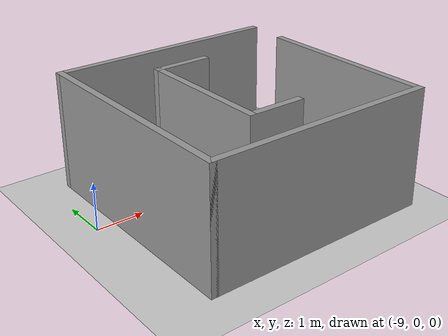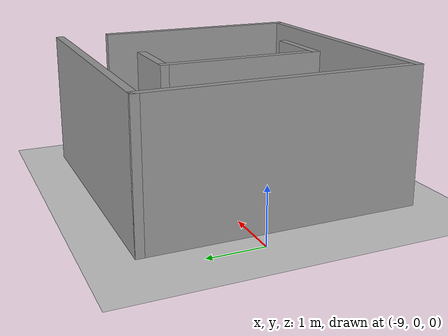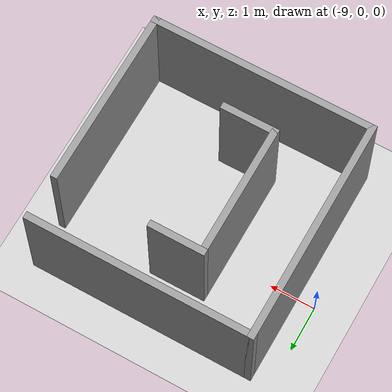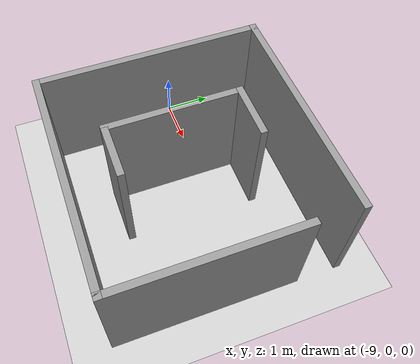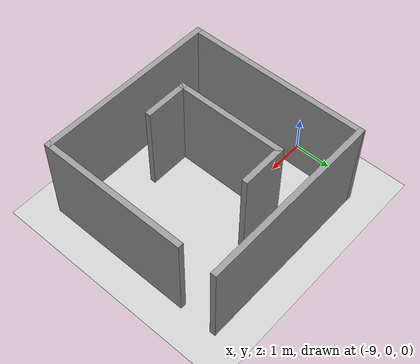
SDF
<sdf version="1.7">
 <world name="default">
  <light name="sun" type="directional">
   <pose>0 0 10 0 -0 0</pose>
   <diffuse>0.8 0.8 0.8 1</diffuse>
   <specular>0.2 0.2 0.2 1</specular>
   <attenuation>
    <range>1000</range>
    <constant>0.9</constant>
    <linear>0.01</linear>
    <quadratic>0.001</quadratic>
   </attenuation>
   <direction>-0.5 0.1 -0.9</direction>
   <spot><inner_angle>0</inner_angle><outer_angle>0</outer_angle><falloff>0</falloff></spot>
  </light>
  <model name="ground_plane">
   <static>1</static>
   <link name="link">
    <collision name="collision">
     <geometry><plane><normal>0 0 1</normal><size>100 100</size></plane></geometry>
     <surface>
      <contact><collide_bitmask>65535</collide_bitmask></contact>
      <friction><ode><mu>100</mu><mu2>50</mu2></ode></friction>
     </surface>
    </collision>
    <visual name="visual">
     <cast_shadows>0</cast_shadows>
     <geometry><plane><normal>0 0 1</normal><size>100 100</size></plane></geometry>
     <material>
      <script><uri>file://media/materials/scripts/gazebo.material</uri><name>Gazebo/Grey</name></script>
     </material>
    </visual>
   </link>
  </model>
  <gravity>0 0 -9.8</gravity>
  <magnetic_field>6e-06 2.3e-05 -4.2e-05</magnetic_field>
  <atmosphere type="adiabatic"/>
  <physics type="ode">
   <max_step_size>0.001</max_step_size>
   <real_time_factor>1</real_time_factor>
   <real_time_update_rate>1000</real_time_update_rate>
  </physics>
  <scene><ambient>0.4 0.4 0.4 1</ambient><background>0.7 0.7 0.7 1</background><shadows>1</shadows></scene>
  <audio><device>default</device></audio>
  <spherical_coordinates>
   <surface_model>EARTH_WGS84</surface_model>
   <latitude_deg>0</latitude_deg>
   <longitude_deg>0</longitude_deg>
   <elevation>0</elevation>
   <heading_deg>0</heading_deg>
  </spherical_coordinates>
  <model name="maze">
   <pose>-5.98181 -1.91532 0 0 -0 0</pose>
   <link name="Wall_10">
    <collision name="Wall_10_Collision">
     <geometry><box><size>3 0.15 2.5</size></box></geometry>
     <pose>0 0 1.25 0 -0 0</pose>
    </collision>
    <visual name="Wall_10_Visual">
     <pose>0 0 1.25 0 -0 0</pose>
     <geometry><box><size>3 0.15 2.5</size></box></geometry>
     <material>
      <script><uri>file://media/materials/scripts/gazebo.material</uri><name>Gazebo/Grey</name></script>
      <ambient>1 1 1 1</ambient>
     </material>
     <meta><layer>0</layer></meta>
    </visual>
    <pose>-0.936017 1.36085 0 0 -0 -1.5708</pose>
   </link>
   <link name="Wall_11">
    <collision name="Wall_11_Collision">
     <geometry><box><size>1.25 0.15 2.5</size></box></geometry>
     <pose>0 0 1.25 0 -0 0</pose>
    </collision>
    <visual name="Wall_11_Visual">
     <pose>0 0 1.25 0 -0 0</pose>
     <geometry><box><size>1.25 0.15 2.5</size></box></geometry>
     <material>
      <script><uri>file://media/materials/scripts/gazebo.material</uri><name>Gazebo/Grey</name></script>
      <ambient>1 1 1 1</ambient>
     </material>
     <meta><layer>0</layer></meta>
    </visual>
    <pose>-0.386017 -0.064154 0 0 -0 0</pose>
   </link>
   <link name="Wall_3">
    <collision name="Wall_3_Collision">
     <geometry><box><size>5 0.15 2.5</size></box></geometry>
     <pose>0 0 1.25 0 -0 0</pose>
    </collision>
    <visual name="Wall_3_Visual">
     <pose>0 0 1.25 0 -0 0</pose>
     <geometry><box><size>5 0.15 2.5</size></box></geometry>
     <material>
      <script><uri>file://media/materials/scripts/gazebo.material</uri><name>Gazebo/Grey</name></script>
      <ambient>1 1 1 1</ambient>
     </material>
     <meta><layer>0</layer></meta>
    </visual>
    <pose>-2.55135 1.36652 0 0 -0 -1.5708</pose>
   </link>
   <link name="Wall_4">
    <collision name="Wall_4_Collision">
     <geometry><box><size>5 0.15 2.5</size></box></geometry>
     <pose>0 0 1.25 0 -0 0</pose>
    </collision>
    <visual name="Wall_4_Visual">
     <pose>0 0 1.25 0 -0 0</pose>
     <geometry><box><size>5 0.15 2.5</size></box></geometry>
     <material>
      <script><uri>file://media/materials/scripts/gazebo.material</uri><name>Gazebo/Grey</name></script>
      <ambient>1 1 1 1</ambient>
     </material>
     <meta><layer>0</layer></meta>
    </visual>
    <pose>-0.126349 -1.05848 0 0 -0 0</pose>
   </link>
   <link name="Wall_5">
    <collision name="Wall_5_Collision">
     <geometry><box><size>4 0.15 2.5</size></box></geometry>
     <pose>0 0 1.25 0 -0 0</pose>
    </collision>
    <visual name="Wall_5_Visual">
     <pose>0 0 1.25 0 -0 0</pose>
     <geometry><box><size>4 0.15 2.5</size></box></geometry>
     <material>
      <script><uri>file://media/materials/scripts/gazebo.material</uri><name>Gazebo/Grey</name></script>
      <ambient>1 1 1 1</ambient>
     </material>
     <meta><layer>0</layer></meta>
    </visual>
    <pose>2.29865 0.866524 0 0 -0 1.5708</pose>
   </link>
   <link name="Wall_7">
    <collision name="Wall_7_Collision">
     <geometry><box><size>5 0.15 2.5</size></box></geometry>
     <pose>0 0 1.25 0 -0 0</pose>
    </collision>
    <visual name="Wall_7_Visual">
     <pose>0 0 1.25 0 -0 0</pose>
     <geometry><box><size>5 0.15 2.5</size></box></geometry>
     <material>
      <script><uri>file://media/materials/scripts/gazebo.material</uri><name>Gazebo/Grey</name></script>
      <ambient>1 1 1 1</ambient>
     </material>
     <meta><layer>0</layer></meta>
    </visual>
    <pose>-0.126349 3.79152 0 0 -0 0</pose>
   </link>
   <link name="Wall_9">
    <collision name="Wall_9_Collision">
     <geometry><box><size>1.25 0.15 2.5</size></box></geometry>
     <pose>0 0 1.25 0 -0 0</pose>
    </collision>
    <visual name="Wall_9_Visual">
     <pose>0 0 1.25 0 -0 0</pose>
     <geometry><box><size>1.25 0.15 2.5</size></box></geometry>
     <material>
      <script><uri>file://media/materials/scripts/gazebo.material</uri><name>Gazebo/Grey</name></script>
      <ambient>1 1 1 1</ambient>
     </material>
     <meta><layer>0</layer></meta>
    </visual>
    <pose>-0.386017 2.78585 0 0 -0 3.14159</pose>
   </link>
   <static>1</static>
  </model>
 </world>
</sdf>
